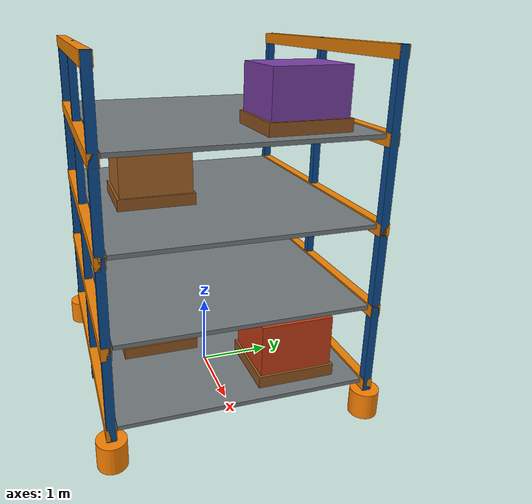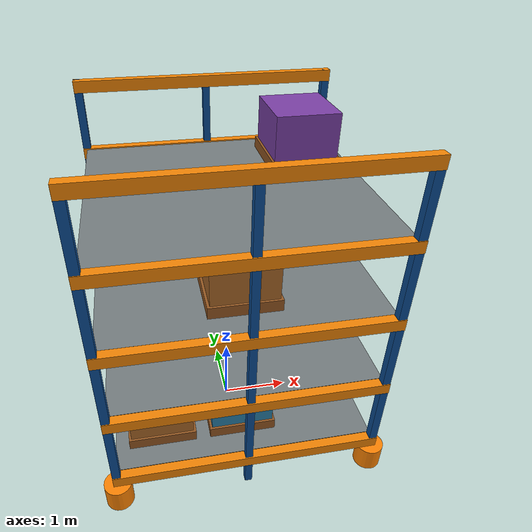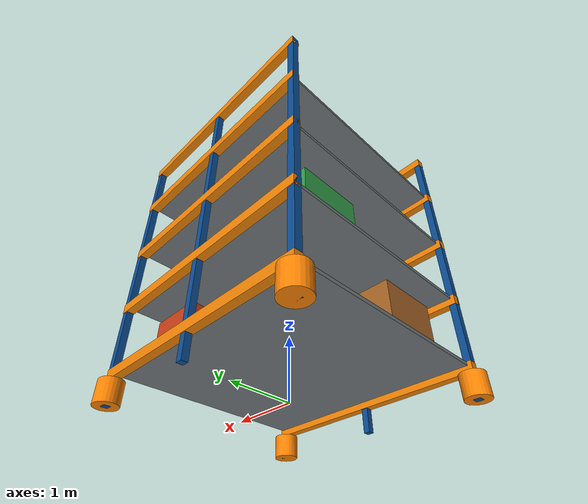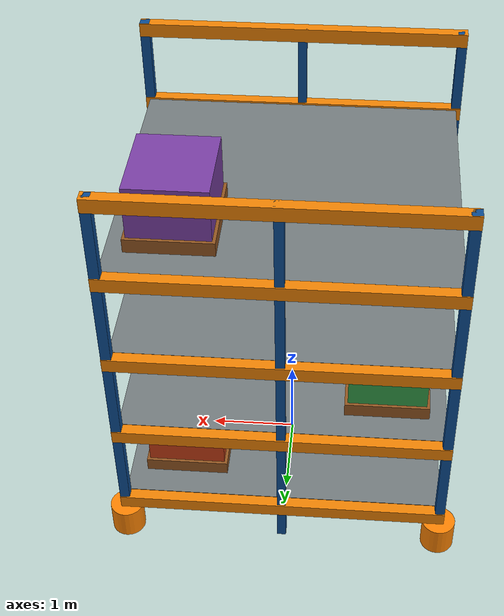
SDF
<?xml version="1.0"?>
<sdf version="1.10">
  <model name="swarmroute_rack">
    <static>true</static>
    <link name="rack">
      <collision name="collision"><pose>0 0 2.4 0 0 0</pose><geometry><box><size>3.9 3.9 4.8</size></box></geometry></collision>

      <!-- Blue uprights -->
      <visual name="post_nw"><pose>-1.82 1.70 2.4 0 0 0</pose><geometry><box><size>0.11 0.11 4.8</size></box></geometry><material><ambient>0.03 0.16 0.30 1</ambient><diffuse>0.04 0.30 0.58 1</diffuse><specular>0.45 0.45 0.45 1</specular></material></visual>
      <visual name="post_ne"><pose>1.82 1.70 2.4 0 0 0</pose><geometry><box><size>0.11 0.11 4.8</size></box></geometry><material><ambient>0.03 0.16 0.30 1</ambient><diffuse>0.04 0.30 0.58 1</diffuse><specular>0.45 0.45 0.45 1</specular></material></visual>
      <visual name="post_sw"><pose>-1.82 -1.70 2.4 0 0 0</pose><geometry><box><size>0.11 0.11 4.8</size></box></geometry><material><ambient>0.03 0.16 0.30 1</ambient><diffuse>0.04 0.30 0.58 1</diffuse><specular>0.45 0.45 0.45 1</specular></material></visual>
      <visual name="post_se"><pose>1.82 -1.70 2.4 0 0 0</pose><geometry><box><size>0.11 0.11 4.8</size></box></geometry><material><ambient>0.03 0.16 0.30 1</ambient><diffuse>0.04 0.30 0.58 1</diffuse><specular>0.45 0.45 0.45 1</specular></material></visual>
      <visual name="post_mid_n"><pose>0 1.70 2.4 0 0 0</pose><geometry><box><size>0.10 0.10 4.8</size></box></geometry><material><ambient>0.03 0.16 0.30 1</ambient><diffuse>0.04 0.30 0.58 1</diffuse></material></visual>
      <visual name="post_mid_s"><pose>0 -1.70 2.4 0 0 0</pose><geometry><box><size>0.10 0.10 4.8</size></box></geometry><material><ambient>0.03 0.16 0.30 1</ambient><diffuse>0.04 0.30 0.58 1</diffuse></material></visual>

      <!-- Orange load beams -->
      <visual name="beam_n_1"><pose>0 1.70 0.45 0 0 0</pose><geometry><box><size>3.75 0.13 0.16</size></box></geometry><material><ambient>0.68 0.34 0.01 1</ambient><diffuse>0.95 0.52 0.015 1</diffuse></material></visual>
      <visual name="beam_n_2"><pose>0 1.70 1.55 0 0 0</pose><geometry><box><size>3.75 0.13 0.16</size></box></geometry><material><ambient>0.68 0.34 0.01 1</ambient><diffuse>0.95 0.52 0.015 1</diffuse></material></visual>
      <visual name="beam_n_3"><pose>0 1.70 2.65 0 0 0</pose><geometry><box><size>3.75 0.13 0.16</size></box></geometry><material><ambient>0.68 0.34 0.01 1</ambient><diffuse>0.95 0.52 0.015 1</diffuse></material></visual>
      <visual name="beam_n_4"><pose>0 1.70 3.75 0 0 0</pose><geometry><box><size>3.75 0.13 0.16</size></box></geometry><material><ambient>0.68 0.34 0.01 1</ambient><diffuse>0.95 0.52 0.015 1</diffuse></material></visual>
      <visual name="beam_n_5"><pose>0 1.70 4.72 0 0 0</pose><geometry><box><size>3.75 0.13 0.16</size></box></geometry><material><ambient>0.68 0.34 0.01 1</ambient><diffuse>0.95 0.52 0.015 1</diffuse></material></visual>
      <visual name="beam_s_1"><pose>0 -1.70 0.45 0 0 0</pose><geometry><box><size>3.75 0.13 0.16</size></box></geometry><material><ambient>0.68 0.34 0.01 1</ambient><diffuse>0.95 0.52 0.015 1</diffuse></material></visual>
      <visual name="beam_s_2"><pose>0 -1.70 1.55 0 0 0</pose><geometry><box><size>3.75 0.13 0.16</size></box></geometry><material><ambient>0.68 0.34 0.01 1</ambient><diffuse>0.95 0.52 0.015 1</diffuse></material></visual>
      <visual name="beam_s_3"><pose>0 -1.70 2.65 0 0 0</pose><geometry><box><size>3.75 0.13 0.16</size></box></geometry><material><ambient>0.68 0.34 0.01 1</ambient><diffuse>0.95 0.52 0.015 1</diffuse></material></visual>
      <visual name="beam_s_4"><pose>0 -1.70 3.75 0 0 0</pose><geometry><box><size>3.75 0.13 0.16</size></box></geometry><material><ambient>0.68 0.34 0.01 1</ambient><diffuse>0.95 0.52 0.015 1</diffuse></material></visual>
      <visual name="beam_s_5"><pose>0 -1.70 4.72 0 0 0</pose><geometry><box><size>3.75 0.13 0.16</size></box></geometry><material><ambient>0.68 0.34 0.01 1</ambient><diffuse>0.95 0.52 0.015 1</diffuse></material></visual>

      <!-- Galvanized shelf decks -->
      <visual name="deck_1"><pose>0 0 0.49 0 0 0</pose><geometry><box><size>3.64 3.24 0.055</size></box></geometry><material><ambient>0.22 0.24 0.25 1</ambient><diffuse>0.46 0.49 0.50 1</diffuse><specular>0.65 0.65 0.65 1</specular></material></visual>
      <visual name="deck_2"><pose>0 0 1.59 0 0 0</pose><geometry><box><size>3.64 3.24 0.055</size></box></geometry><material><ambient>0.22 0.24 0.25 1</ambient><diffuse>0.46 0.49 0.50 1</diffuse><specular>0.65 0.65 0.65 1</specular></material></visual>
      <visual name="deck_3"><pose>0 0 2.69 0 0 0</pose><geometry><box><size>3.64 3.24 0.055</size></box></geometry><material><ambient>0.22 0.24 0.25 1</ambient><diffuse>0.46 0.49 0.50 1</diffuse><specular>0.65 0.65 0.65 1</specular></material></visual>
      <visual name="deck_4"><pose>0 0 3.79 0 0 0</pose><geometry><box><size>3.64 3.24 0.055</size></box></geometry><material><ambient>0.22 0.24 0.25 1</ambient><diffuse>0.46 0.49 0.50 1</diffuse><specular>0.65 0.65 0.65 1</specular></material></visual>

      <!-- Pallets and varied loads -->
      <visual name="pallet_a"><pose>-1.15 -0.78 0.60 0 0 0</pose><geometry><box><size>0.95 1.05 0.16</size></box></geometry><material><ambient>0.32 0.18 0.07 1</ambient><diffuse>0.58 0.34 0.13 1</diffuse></material></visual>
      <visual name="load_a"><pose>-1.15 -0.78 1.02 0 0 0</pose><geometry><box><size>0.88 0.98 0.68</size></box></geometry><material><ambient>0.34 0.20 0.08 1</ambient><diffuse>0.66 0.40 0.15 1</diffuse></material></visual>
      <visual name="pallet_b"><pose>0 -0.78 0.60 0 0 0</pose><geometry><box><size>0.95 1.05 0.16</size></box></geometry><material><ambient>0.32 0.18 0.07 1</ambient><diffuse>0.58 0.34 0.13 1</diffuse></material></visual>
      <visual name="load_b"><pose>0 -0.78 0.95 0 0 0</pose><geometry><box><size>0.88 0.98 0.54</size></box></geometry><material><ambient>0.10 0.30 0.42 1</ambient><diffuse>0.16 0.50 0.66 1</diffuse></material></visual>
      <visual name="pallet_c"><pose>1.15 0.78 0.60 0 0 0</pose><geometry><box><size>0.95 1.05 0.16</size></box></geometry><material><ambient>0.32 0.18 0.07 1</ambient><diffuse>0.58 0.34 0.13 1</diffuse></material></visual>
      <visual name="load_c"><pose>1.15 0.78 1.03 0 0 0</pose><geometry><box><size>0.88 0.98 0.70</size></box></geometry><material><ambient>0.43 0.12 0.05 1</ambient><diffuse>0.78 0.24 0.08 1</diffuse></material></visual>
      <visual name="pallet_d"><pose>-1.15 0.78 1.70 0 0 0</pose><geometry><box><size>0.95 1.05 0.16</size></box></geometry><material><ambient>0.32 0.18 0.07 1</ambient><diffuse>0.58 0.34 0.13 1</diffuse></material></visual>
      <visual name="load_d"><pose>-1.15 0.78 2.08 0 0 0</pose><geometry><box><size>0.88 0.98 0.60</size></box></geometry><material><ambient>0.12 0.34 0.16 1</ambient><diffuse>0.20 0.62 0.28 1</diffuse></material></visual>
      <visual name="pallet_e"><pose>0 -0.78 2.80 0 0 0</pose><geometry><box><size>0.95 1.05 0.16</size></box></geometry><material><ambient>0.32 0.18 0.07 1</ambient><diffuse>0.58 0.34 0.13 1</diffuse></material></visual>
      <visual name="load_e"><pose>0 -0.78 3.20 0 0 0</pose><geometry><box><size>0.88 0.98 0.64</size></box></geometry><material><ambient>0.34 0.20 0.08 1</ambient><diffuse>0.66 0.40 0.15 1</diffuse></material></visual>
      <visual name="pallet_f"><pose>1.15 0.78 3.90 0 0 0</pose><geometry><box><size>0.95 1.05 0.16</size></box></geometry><material><ambient>0.32 0.18 0.07 1</ambient><diffuse>0.58 0.34 0.13 1</diffuse></material></visual>
      <visual name="load_f"><pose>1.15 0.78 4.28 0 0 0</pose><geometry><box><size>0.88 0.98 0.60</size></box></geometry><material><ambient>0.26 0.14 0.36 1</ambient><diffuse>0.48 0.25 0.65 1</diffuse></material></visual>

      <!-- High-visibility post guards -->
      <visual name="guard_nw"><pose>-1.82 1.70 0.18 0 0 0</pose><geometry><cylinder><radius>0.19</radius><length>0.36</length></cylinder></geometry><material><ambient>0.72 0.31 0 1</ambient><diffuse>1 0.52 0.01 1</diffuse></material></visual>
      <visual name="guard_ne"><pose>1.82 1.70 0.18 0 0 0</pose><geometry><cylinder><radius>0.19</radius><length>0.36</length></cylinder></geometry><material><ambient>0.72 0.31 0 1</ambient><diffuse>1 0.52 0.01 1</diffuse></material></visual>
      <visual name="guard_sw"><pose>-1.82 -1.70 0.18 0 0 0</pose><geometry><cylinder><radius>0.19</radius><length>0.36</length></cylinder></geometry><material><ambient>0.72 0.31 0 1</ambient><diffuse>1 0.52 0.01 1</diffuse></material></visual>
      <visual name="guard_se"><pose>1.82 -1.70 0.18 0 0 0</pose><geometry><cylinder><radius>0.19</radius><length>0.36</length></cylinder></geometry><material><ambient>0.72 0.31 0 1</ambient><diffuse>1 0.52 0.01 1</diffuse></material></visual>
    </link>
  </model>
</sdf>
